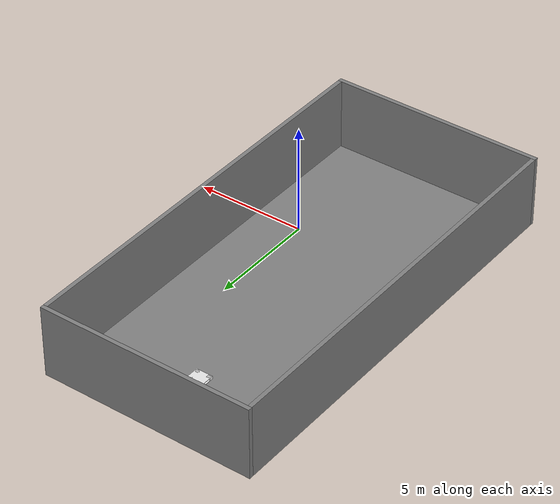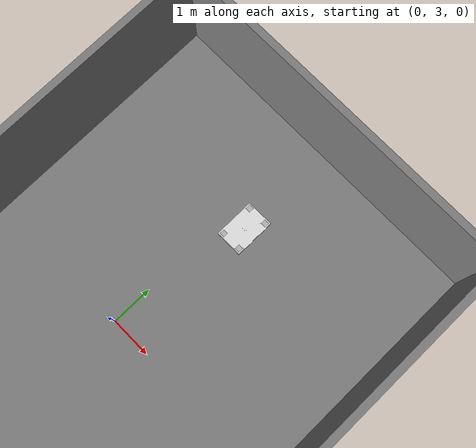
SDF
<sdf version='1.7'>
  <world name='default'>
    <light name='sun' type='directional'>
      <cast_shadows>0</cast_shadows>
      <pose>0 0 10 0 -0 0</pose>
      <diffuse>0.8 0.8 0.8 1</diffuse>
      <specular>0.2 0.2 0.2 1</specular>
      <attenuation>
        <range>1000</range>
        <constant>0.9</constant>
        <linear>0.01</linear>
        <quadratic>0.001</quadratic>
      </attenuation>
      <direction>-0.5 0.1 -0.9</direction>
      <spot>
        <inner_angle>0</inner_angle>
        <outer_angle>0</outer_angle>
        <falloff>0</falloff>
      </spot>
    </light>
    <gravity>0 0 -9.8</gravity>
    <magnetic_field>6e-06 2.3e-05 -4.2e-05</magnetic_field>
    <atmosphere type='adiabatic'/>
    <physics type='ode'>
      <max_step_size>0.002</max_step_size>
      <real_time_factor>1</real_time_factor>
      <real_time_update_rate>500</real_time_update_rate>
    </physics>
    <wind/>
    <spherical_coordinates>
      <surface_model>EARTH_WGS84</surface_model>
      <latitude_deg>0</latitude_deg>
      <longitude_deg>0</longitude_deg>
      <elevation>0</elevation>
      <heading_deg>0</heading_deg>
    </spherical_coordinates>

    <!-- TAC pool: 10m (X) x 20m (Y) x 3.5m (Z), centered at origin, water surface at z=0 -->
    <model name='tac_pool'>
      <static>1</static>
      <pose>0 0 0 0 0 0</pose>
      <link name='tac_pool_link'>
        <pose>0 0 0 0 0 0</pose>

        <!-- Floor -->
        <collision name='floor_col'>
          <pose>0 0 -3.6 0 0 0</pose>
          <geometry>
            <box>
              <size>10 20 0.2</size>
            </box>
          </geometry>
        </collision>
        <visual name='floor_vis'>
          <pose>0 0 -3.6 0 0 0</pose>
          <geometry>
            <box>
              <size>10 20 0.2</size>
            </box>
          </geometry>
          <material>
            <ambient>0.5 0.5 0.5 1</ambient>
            <diffuse>0.5 0.5 0.5 1</diffuse>
            <specular>0.1 0.1 0.1 1</specular>
          </material>
        </visual>

        <!-- +Y short wall -->
        <collision name='wall_y_pos_col'>
          <pose>0 10.1 -1.75 0 0 0</pose>
          <geometry>
            <box>
              <size>10.4 0.2 3.5</size>
            </box>
          </geometry>
        </collision>
        <visual name='wall_y_pos_vis'>
          <pose>0 10.1 -1.75 0 0 0</pose>
          <geometry>
            <box>
              <size>10.4 0.2 3.5</size>
            </box>
          </geometry>
          <material>
            <ambient>0.5 0.5 0.5 1</ambient>
            <diffuse>0.5 0.5 0.5 1</diffuse>
            <specular>0.1 0.1 0.1 1</specular>
          </material>
        </visual>

        <!-- -Y short wall -->
        <collision name='wall_y_neg_col'>
          <pose>0 -10.1 -1.75 0 0 0</pose>
          <geometry>
            <box>
              <size>10.4 0.2 3.5</size>
            </box>
          </geometry>
        </collision>
        <visual name='wall_y_neg_vis'>
          <pose>0 -10.1 -1.75 0 0 0</pose>
          <geometry>
            <box>
              <size>10.4 0.2 3.5</size>
            </box>
          </geometry>
          <material>
            <ambient>0.5 0.5 0.5 1</ambient>
            <diffuse>0.5 0.5 0.5 1</diffuse>
            <specular>0.1 0.1 0.1 1</specular>
          </material>
        </visual>

        <!-- +X long wall -->
        <collision name='wall_x_pos_col'>
          <pose>5.1 0 -1.75 0 0 0</pose>
          <geometry>
            <box>
              <size>0.2 20 3.5</size>
            </box>
          </geometry>
        </collision>
        <visual name='wall_x_pos_vis'>
          <pose>5.1 0 -1.75 0 0 0</pose>
          <geometry>
            <box>
              <size>0.2 20 3.5</size>
            </box>
          </geometry>
          <material>
            <ambient>0.5 0.5 0.5 1</ambient>
            <diffuse>0.5 0.5 0.5 1</diffuse>
            <specular>0.1 0.1 0.1 1</specular>
          </material>
        </visual>

        <!-- -X long wall -->
        <collision name='wall_x_neg_col'>
          <pose>-5.1 0 -1.75 0 0 0</pose>
          <geometry>
            <box>
              <size>0.2 20 3.5</size>
            </box>
          </geometry>
        </collision>
        <visual name='wall_x_neg_vis'>
          <pose>-5.1 0 -1.75 0 0 0</pose>
          <geometry>
            <box>
              <size>0.2 20 3.5</size>
            </box>
          </geometry>
          <material>
            <ambient>0.5 0.5 0.5 1</ambient>
            <diffuse>0.5 0.5 0.5 1</diffuse>
            <specular>0.1 0.1 0.1 1</specular>
          </material>
        </visual>

        <self_collide>0</self_collide>
        <enable_wind>0</enable_wind>
        <kinematic>0</kinematic>
      </link>
    </model>

    <!-- TAC docking station: 3m from +Y short wall, centered on long sides.
         Pool floor z=-3.5, STL Y-min=-0.072m after roll=pi/2, so z=-3.5+0.072=-3.428 -->
    <include>
      <uri>model://tac_docking_station</uri>
      <name>tac_docking_station</name>
      <pose>0 7 -3.428 1.5708 0 0</pose>
    </include>

    <scene>
      <shadows>0</shadows>
      <grid>false</grid>
      <origin_visual>false</origin_visual>
      <ambient>0.4 0.4 0.4 1</ambient>
      <background>0.7 0.7 0.7 1</background>
    </scene>
    <gui fullscreen='0'>
      <camera name='user_camera'>
        <pose>-15 -15 8 0 0.5 0.8</pose>
        <view_controller>orbit</view_controller>
        <projection_type>perspective</projection_type>
      </camera>
    </gui>
  </world>
</sdf>

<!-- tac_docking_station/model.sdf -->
<sdf version="1.6">
  <model name="tac_docking_station">
    <static>true</static>
    <pose>0 0 0 0 0 0</pose>

    <!-- Main docking station structure -->
    <link name="base_link">
      <pose>0 0 0 0 0 0</pose>

      <collision name="base_collision">
        <pose>0 0 0 0 0 0</pose>
        <geometry>
          <mesh>
            <uri>model://tac_docking_station/meshes/docking_station.stl</uri>
            <scale>0.001 0.001 0.001</scale> <!-- STEP is in mm, Gazebo in m -->
          </mesh>
        </geometry>
      </collision>

      <visual name="base_visual">
        <pose>0 0 0 0 0 0</pose>
        <geometry>
          <mesh>
            <uri>model://tac_docking_station/meshes/docking_station.stl</uri>
            <scale>0.001 0.001 0.001</scale>
          </mesh>
        </geometry>
        <material>
          <ambient>0.8 0.8 0.8 1</ambient>
          <diffuse>0.9 0.9 0.9 1</diffuse>
        </material>
      </visual>
    </link>

    <!-- ArUco Marker 28 (Top-left: x=0.29, z=0.49) -->
    <link name="aruco_28">
      <!-- Position from STEP: (290, 79, 490) mm = (0.29, 0.079, 0.49) m -->
      <!-- Offset slightly above surface (y+0.001) to prevent z-fighting -->
      <!-- Rotated to face -Y direction (looking down at the station from above) -->
      <pose>0.29 0.080 0.49 -1.5708 0 0</pose>
      <visual name="aruco_28_visual">
        <geometry>
          <box>
            <size>0.15 0.15 0.001</size> <!-- 10cm x 10cm marker -->
          </box>
        </geometry>
        <material>
          <script>
            <uri>model://tac_docking_station/materials/scripts</uri>
            <uri>model://tac_docking_station/materials/textures</uri>
            <name>ArUco/Tag28</name>
          </script>
        </material>
      </visual>
    </link>

    <!-- ArUco Marker 7 (Top-right: x=-0.29, z=0.49) -->
    <link name="aruco_7">
      <pose>-0.29 0.080 0.49 -1.5708 0 0</pose>
      <visual name="aruco_7_visual">
        <geometry>
          <box>
            <size>0.15 0.15 0.001</size>
          </box>
        </geometry>
        <material>
          <script>
            <uri>model://tac_docking_station/materials/scripts</uri>
            <uri>model://tac_docking_station/materials/textures</uri>
            <name>ArUco/Tag7</name>
          </script>
        </material>
      </visual>
    </link>

    <!-- ArUco Marker 19 (Bottom-left: x=0.29, z=-0.49) -->
    <link name="aruco_19">
      <pose>0.29 0.080 -0.49 -1.5708 0 0</pose>
      <visual name="aruco_19_visual">
        <geometry>
          <box>
            <size>0.15 0.15 0.001</size>
          </box>
        </geometry>
        <material>
          <script>
            <uri>model://tac_docking_station/materials/scripts</uri>
            <uri>model://tac_docking_station/materials/textures</uri>
            <name>ArUco/Tag19</name>
          </script>
        </material>
      </visual>
    </link>

    <!-- ArUco Marker 96 (Bottom-right: x=-0.29, z=-0.49) -->
    <link name="aruco_96">
      <pose>-0.29 0.080 -0.49 -1.5708 0 0</pose>
      <visual name="aruco_96_visual">
        <geometry>
          <box>
            <size>0.15 0.15 0.001</size>
          </box>
        </geometry>
        <material>
          <script>
            <uri>model://tac_docking_station/materials/scripts</uri>
            <uri>model://tac_docking_station/materials/textures</uri>
            <name>ArUco/Tag96</name>
          </script>
        </material>
      </visual>
    </link>

  </model>
</sdf>
